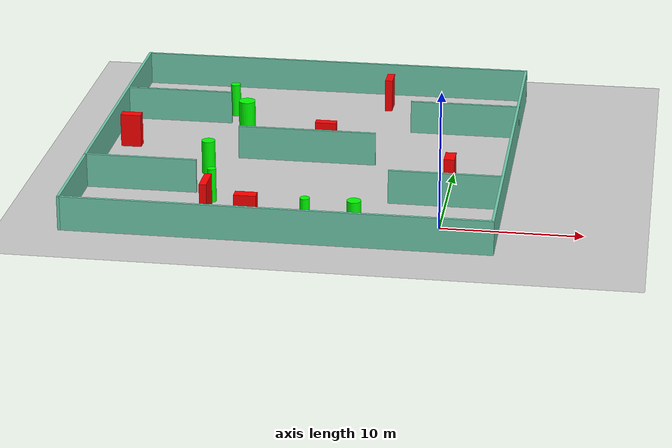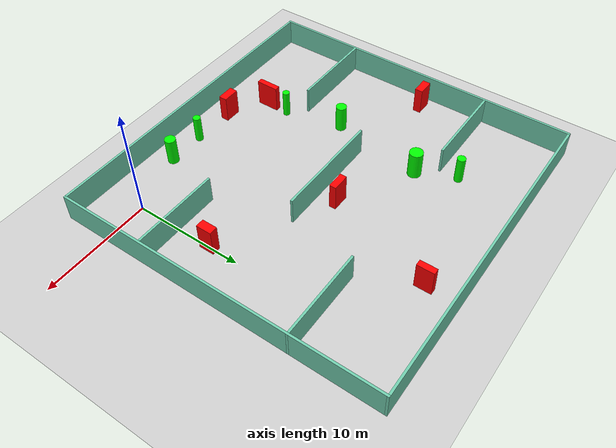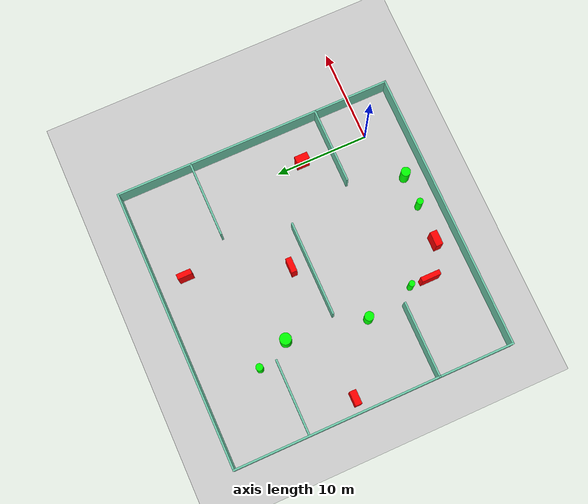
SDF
<sdf version="1.7">
 <world name="default">
  <light name="sun" type="directional">
   <pose>0 0 10 0 -0 0</pose>
   <diffuse>0.8 0.8 0.8 1</diffuse>
   <specular>0.2 0.2 0.2 1</specular>
   <attenuation>
    <range>1000</range>
    <constant>0.9</constant>
    <linear>0.01</linear>
    <quadratic>0.001</quadratic>
   </attenuation>
   <direction>-0.5 0.1 -0.9</direction>
   <spot><inner_angle>0</inner_angle><outer_angle>0</outer_angle><falloff>0</falloff></spot>
  </light>
  <model name="ground_plane">
   <static>1</static>
   <link name="link">
    <collision name="collision">
     <geometry><plane><normal>0 0 1</normal><size>100 100</size></plane></geometry>
     <surface>
      <contact><collide_bitmask>65535</collide_bitmask></contact>
      <friction><ode><mu>100</mu><mu2>50</mu2></ode></friction>
     </surface>
    </collision>
    <visual name="visual">
     <cast_shadows>0</cast_shadows>
     <geometry><plane><normal>0 0 1</normal><size>100 100</size></plane></geometry>
     <material>
      <script><uri>file://media/materials/scripts/gazebo.material</uri><name>Gazebo/Grey</name></script>
     </material>
    </visual>
   </link>
  </model>
  <gravity>0 0 -9.8</gravity>
  <magnetic_field>6e-06 2.3e-05 -4.2e-05</magnetic_field>
  <atmosphere type="adiabatic"/>
  <physics type="ode">
   <max_step_size>0.001</max_step_size>
   <real_time_factor>1</real_time_factor>
   <real_time_update_rate>1000</real_time_update_rate>
  </physics>
  <scene><ambient>0.4 0.4 0.4 1</ambient><background>0.7 0.7 0.7 1</background><shadows>1</shadows></scene>
  <spherical_coordinates>
   <surface_model>EARTH_WGS84</surface_model>
   <latitude_deg>0</latitude_deg>
   <longitude_deg>0</longitude_deg>
   <elevation>0</elevation>
   <heading_deg>0</heading_deg>
  </spherical_coordinates>
  <model name="my_base_walls">
   <link name="Wall_10">
    <collision name="Wall_10_Collision">
     <geometry><box><size>8.2 0.2 2.5</size></box></geometry>
     <pose>0 0 1.25 0 -0 0</pose>
    </collision>
    <visual name="Wall_10_Visual">
     <pose>0 0 1.25 0 -0 0</pose>
     <geometry><box><size>8.2 0.2 2.5</size></box></geometry>
     <material>
      <script><uri>file://media/materials/scripts/gazebo.material</uri><name>Gazebo/Grey</name></script>
      <ambient>0.435294 0.796078 0.67451 1</ambient>
     </material>
     <meta><layer>0</layer></meta>
    </visual>
    <pose>-11 -7 0 0 -0 0</pose>
   </link>
   <link name="Wall_12">
    <collision name="Wall_12_Collision">
     <geometry><box><size>8.2 0.2 2.5</size></box></geometry>
     <pose>0 0 1.25 0 -0 0</pose>
    </collision>
    <visual name="Wall_12_Visual">
     <pose>0 0 1.25 0 -0 0</pose>
     <geometry><box><size>8.2 0.2 2.5</size></box></geometry>
     <material>
      <script><uri>file://media/materials/scripts/gazebo.material</uri><name>Gazebo/Grey</name></script>
      <ambient>0.435294 0.796078 0.67451 1</ambient>
     </material>
     <meta><layer>0</layer></meta>
    </visual>
    <pose>-11 7 0 0 -0 0</pose>
   </link>
   <link name="Wall_14">
    <collision name="Wall_14_Collision">
     <geometry><box><size>8.2 0.2 2.5</size></box></geometry>
     <pose>0 0 1.25 0 -0 0</pose>
    </collision>
    <visual name="Wall_14_Visual">
     <pose>0 0 1.25 0 -0 0</pose>
     <geometry><box><size>8.2 0.2 2.5</size></box></geometry>
     <material>
      <script><uri>file://media/materials/scripts/gazebo.material</uri><name>Gazebo/Grey</name></script>
      <ambient>0.435294 0.796078 0.67451 1</ambient>
     </material>
     <meta><layer>0</layer></meta>
    </visual>
    <pose>11 7 0 0 -0 3.14159</pose>
   </link>
   <link name="Wall_16">
    <collision name="Wall_16_Collision">
     <geometry><box><size>10.2 0.2 2.5</size></box></geometry>
     <pose>0 0 1.25 0 -0 0</pose>
    </collision>
    <visual name="Wall_16_Visual">
     <pose>0 0 1.25 0 -0 0</pose>
     <geometry><box><size>10.2 0.2 2.5</size></box></geometry>
     <material>
      <script><uri>file://media/materials/scripts/gazebo.material</uri><name>Gazebo/Grey</name></script>
      <ambient>0.435294 0.796078 0.67451 1</ambient>
     </material>
     <meta><layer>0</layer></meta>
    </visual>
    <pose>0 0 0 0 -0 3.14159</pose>
   </link>
   <link name="Wall_2">
    <collision name="Wall_2_Collision">
     <geometry><box><size>30.2 0.2 2.5</size></box></geometry>
     <pose>0 0 1.25 0 -0 0</pose>
    </collision>
    <visual name="Wall_2_Visual">
     <pose>0 0 1.25 0 -0 0</pose>
     <geometry><box><size>30.2 0.2 2.5</size></box></geometry>
     <material>
      <script><uri>file://media/materials/scripts/gazebo.material</uri><name>Gazebo/Grey</name></script>
      <ambient>0.435294 0.796078 0.67451 1</ambient>
     </material>
     <meta><layer>0</layer></meta>
    </visual>
    <pose>0 -15 0 0 -0 3.14159</pose>
   </link>
   <link name="Wall_3">
    <collision name="Wall_3_Collision">
     <geometry><box><size>30.2 0.2 2.5</size></box></geometry>
     <pose>0 0 1.25 0 -0 0</pose>
    </collision>
    <visual name="Wall_3_Visual">
     <pose>0 0 1.25 0 -0 0</pose>
     <geometry><box><size>30.2 0.2 2.5</size></box></geometry>
     <material>
      <script><uri>file://media/materials/scripts/gazebo.material</uri><name>Gazebo/Grey</name></script>
      <ambient>0.435294 0.796078 0.67451 1</ambient>
     </material>
     <meta><layer>0</layer></meta>
    </visual>
    <pose>-15 0 0 0 -0 1.5708</pose>
   </link>
   <link name="Wall_4">
    <collision name="Wall_4_Collision">
     <geometry><box><size>30.2 0.2 2.5</size></box></geometry>
     <pose>0 0 1.25 0 -0 0</pose>
    </collision>
    <visual name="Wall_4_Visual">
     <pose>0 0 1.25 0 -0 0</pose>
     <geometry><box><size>30.2 0.2 2.5</size></box></geometry>
     <material>
      <script><uri>file://media/materials/scripts/gazebo.material</uri><name>Gazebo/Grey</name></script>
      <ambient>0.435294 0.796078 0.67451 1</ambient>
     </material>
     <meta><layer>0</layer></meta>
    </visual>
    <pose>0 15 0 0 -0 0</pose>
   </link>
   <link name="Wall_6">
    <collision name="Wall_6_Collision">
     <geometry><box><size>30.2 0.2 2.5</size></box></geometry>
     <pose>0 0 1.25 0 -0 0</pose>
    </collision>
    <visual name="Wall_6_Visual">
     <pose>0 0 1.25 0 -0 0</pose>
     <geometry><box><size>30.2 0.2 2.5</size></box></geometry>
     <material>
      <script><uri>file://media/materials/scripts/gazebo.material</uri><name>Gazebo/Grey</name></script>
      <ambient>0.435294 0.796078 0.67451 1</ambient>
     </material>
     <meta><layer>0</layer></meta>
    </visual>
    <pose>15 0 0 0 -0 1.5708</pose>
   </link>
   <link name="Wall_8">
    <collision name="Wall_8_Collision">
     <geometry><box><size>8.2 0.2 2.5</size></box></geometry>
     <pose>0 0 1.25 0 -0 0</pose>
    </collision>
    <visual name="Wall_8_Visual">
     <pose>0 0 1.25 0 -0 0</pose>
     <geometry><box><size>8.2 0.2 2.5</size></box></geometry>
     <material>
      <script><uri>file://media/materials/scripts/gazebo.material</uri><name>Gazebo/Grey</name></script>
      <ambient>0.435294 0.796078 0.67451 1</ambient>
     </material>
     <meta><layer>0</layer></meta>
    </visual>
    <pose>11 -7 0 0 -0 3.14159</pose>
   </link>
   <static>1</static>
   <pose>-11 11 0 0 -0 0</pose>
  </model>
  <model name="cylinder1">
   <static>1</static>
   <link name="link">
    <inertial>
     <mass>1</mass>
     <inertia><ixx>0.5</ixx><ixy>0</ixy><ixz>0</ixz><iyy>0.5</iyy><iyz>0</iyz><izz>1</izz></inertia>
    </inertial>
    <collision name="collision">
     <geometry><cylinder><radius>0.3193299447528954</radius><length>2.5</length></cylinder></geometry>
    </collision>
    <visual name="visual">
     <geometry><cylinder><radius>0.3193299447528954</radius><length>2.5</length></cylinder></geometry>
     <material>
      <ambient>0 1 0 1</ambient>
      <diffuse>0 1 0 1</diffuse>
      <specular>0.1 0.1 0.1 1</specular>
      <emissive>0 0 0 0</emissive>
     </material>
    </visual>
   </link>
   <pose>-16.506676792405212 2.549113611327476 1.25 0 0 0</pose>
  </model>
  <model name="cylinder2">
   <static>1</static>
   <link name="link">
    <inertial>
     <mass>1</mass>
     <inertia><ixx>0.5</ixx><ixy>0</ixy><ixz>0</ixz><iyy>0.5</iyy><iyz>0</iyz><izz>1</izz></inertia>
    </inertial>
    <collision name="collision">
     <geometry><cylinder><radius>0.4984983910241143</radius><length>2.5</length></cylinder></geometry>
    </collision>
    <visual name="visual">
     <geometry><cylinder><radius>0.4984983910241143</radius><length>2.5</length></cylinder></geometry>
     <material>
      <ambient>0 1 0 1</ambient>
      <diffuse>0 1 0 1</diffuse>
      <specular>0.1 0.1 0.1 1</specular>
      <emissive>0 0 0 0</emissive>
     </material>
    </visual>
   </link>
   <pose>-5.737953770354649 -1.8297029005374106 1.25 0 0 0</pose>
  </model>
  <model name="cylinder3">
   <static>1</static>
   <link name="link">
    <inertial>
     <mass>1</mass>
     <inertia><ixx>0.5</ixx><ixy>0</ixy><ixz>0</ixz><iyy>0.5</iyy><iyz>0</iyz><izz>1</izz></inertia>
    </inertial>
    <collision name="collision">
     <geometry><cylinder><radius>0.34870405236391383</radius><length>2.5</length></cylinder></geometry>
    </collision>
    <visual name="visual">
     <geometry><cylinder><radius>0.34870405236391383</radius><length>2.5</length></cylinder></geometry>
     <material>
      <ambient>0 1 0 1</ambient>
      <diffuse>0 1 0 1</diffuse>
      <specular>0.1 0.1 0.1 1</specular>
      <emissive>0 0 0 0</emissive>
     </material>
    </visual>
   </link>
   <pose>-9.157224812846481 -1.8275171542015656 1.25 0 0 0</pose>
  </model>
  <model name="cylinder4">
   <static>1</static>
   <link name="link">
    <inertial>
     <mass>1</mass>
     <inertia><ixx>0.5</ixx><ixy>0</ixy><ixz>0</ixz><iyy>0.5</iyy><iyz>0</iyz><izz>1</izz></inertia>
    </inertial>
    <collision name="collision">
     <geometry><cylinder><radius>0.49163248309142693</radius><length>2.5</length></cylinder></geometry>
    </collision>
    <visual name="visual">
     <geometry><cylinder><radius>0.49163248309142693</radius><length>2.5</length></cylinder></geometry>
     <material>
      <ambient>0 1 0 1</ambient>
      <diffuse>0 1 0 1</diffuse>
      <specular>0.1 0.1 0.1 1</specular>
      <emissive>0 0 0 0</emissive>
     </material>
    </visual>
   </link>
   <pose>-17.75578974704507 7.827686292557875 1.25 0 0 0</pose>
  </model>
  <model name="cylinder5">
   <static>1</static>
   <link name="link">
    <inertial>
     <mass>1</mass>
     <inertia><ixx>0.5</ixx><ixy>0</ixy><ixz>0</ixz><iyy>0.5</iyy><iyz>0</iyz><izz>1</izz></inertia>
    </inertial>
    <collision name="collision">
     <geometry><cylinder><radius>0.6174456605416301</radius><length>2.5</length></cylinder></geometry>
    </collision>
    <visual name="visual">
     <geometry><cylinder><radius>0.6174456605416301</radius><length>2.5</length></cylinder></geometry>
     <material>
      <ambient>0 1 0 1</ambient>
      <diffuse>0 1 0 1</diffuse>
      <specular>0.1 0.1 0.1 1</specular>
      <emissive>0 0 0 0</emissive>
     </material>
    </visual>
   </link>
   <pose>-16.418560159039515 16.335442790359803 1.25 0 0 0</pose>
  </model>
  <model name="cylinder6">
   <static>1</static>
   <link name="link">
    <inertial>
     <mass>1</mass>
     <inertia><ixx>0.5</ixx><ixy>0</ixy><ixz>0</ixz><iyy>0.5</iyy><iyz>0</iyz><izz>1</izz></inertia>
    </inertial>
    <collision name="collision">
     <geometry><cylinder><radius>0.3814859643592877</radius><length>2.5</length></cylinder></geometry>
    </collision>
    <visual name="visual">
     <geometry><cylinder><radius>0.3814859643592877</radius><length>2.5</length></cylinder></geometry>
     <material>
      <ambient>0 1 0 1</ambient>
      <diffuse>0 1 0 1</diffuse>
      <specular>0.1 0.1 0.1 1</specular>
      <emissive>0 0 0 0</emissive>
     </material>
    </visual>
   </link>
   <pose>-17.933951828256053 19.808186195740873 1.25 0 0 0</pose>
  </model>
  <model name="box1">
   <static>1</static>
   <link name="link">
    <inertial>
     <mass>1</mass>
     <inertia><ixx>0.083</ixx><ixy>0</ixy><ixz>0</ixz><iyy>0.083</iyy><iyz>0</iyz><izz>0.083</izz></inertia>
    </inertial>
    <collision name="collision">
     <geometry><box><size>1.5715904638905331 0.6207503761036312 2.5</size></box></geometry>
    </collision>
    <visual name="visual">
     <geometry><box><size>1.5715904638905331 0.6207503761036312 2.5</size></box></geometry>
     <material>
      <ambient>1 0 0 1</ambient>
      <diffuse>1 0 0 1</diffuse>
      <specular>0.1 0.1 0.1 1</specular>
      <emissive>0 0 0 0</emissive>
     </material>
    </visual>
    <sensor name="my_contact" type="contact">
     <contact><collision>box_collision</collision><topic>__default_topic__</topic></contact>
    </sensor>
   </link>
   <pose>-9.840611140008715 12.804355783368976 1.25 0 0 0</pose>
  </model>
  <model name="box2">
   <static>1</static>
   <link name="link">
    <inertial>
     <mass>1</mass>
     <inertia><ixx>0.083</ixx><ixy>0</ixy><ixz>0</ixz><iyy>0.083</iyy><iyz>0</iyz><izz>0.083</izz></inertia>
    </inertial>
    <collision name="collision">
     <geometry><box><size>1.5591329575661492 0.7600271639706733 2.5</size></box></geometry>
    </collision>
    <visual name="visual">
     <geometry><box><size>1.5591329575661492 0.7600271639706733 2.5</size></box></geometry>
     <material>
      <ambient>1 0 0 1</ambient>
      <diffuse>1 0 0 1</diffuse>
      <specular>0.1 0.1 0.1 1</specular>
      <emissive>0 0 0 0</emissive>
     </material>
    </visual>
    <sensor name="my_contact" type="contact">
     <contact><collision>box_collision</collision><topic>__default_topic__</topic></contact>
    </sensor>
   </link>
   <pose>-13.313763858472804 -1.6865368989782334 1.25 0 0 0</pose>
  </model>
  <model name="box3">
   <static>1</static>
   <link name="link">
    <inertial>
     <mass>1</mass>
     <inertia><ixx>0.083</ixx><ixy>0</ixy><ixz>0</ixz><iyy>0.083</iyy><iyz>0</iyz><izz>0.083</izz></inertia>
    </inertial>
    <collision name="collision">
     <geometry><box><size>0.7687147863684869 1.407803973784217 2.5</size></box></geometry>
    </collision>
    <visual name="visual">
     <geometry><box><size>0.7687147863684869 1.407803973784217 2.5</size></box></geometry>
     <material>
      <ambient>1 0 0 1</ambient>
      <diffuse>1 0 0 1</diffuse>
      <specular>0.1 0.1 0.1 1</specular>
      <emissive>0 0 0 0</emissive>
     </material>
    </visual>
    <sensor name="my_contact" type="contact">
     <contact><collision>box_collision</collision><topic>__default_topic__</topic></contact>
    </sensor>
   </link>
   <pose>-0.04483783089126092 7.272520399056903 1.25 0 0 0</pose>
  </model>
  <model name="box4">
   <static>1</static>
   <link name="link">
    <inertial>
     <mass>1</mass>
     <inertia><ixx>0.083</ixx><ixy>0</ixy><ixz>0</ixz><iyy>0.083</iyy><iyz>0</iyz><izz>0.083</izz></inertia>
    </inertial>
    <collision name="collision">
     <geometry><box><size>1.5213354108746642 0.7213570340607354 2.5</size></box></geometry>
    </collision>
    <visual name="visual">
     <geometry><box><size>1.5213354108746642 0.7213570340607354 2.5</size></box></geometry>
     <material>
      <ambient>1 0 0 1</ambient>
      <diffuse>1 0 0 1</diffuse>
      <specular>0.1 0.1 0.1 1</specular>
      <emissive>0 0 0 0</emissive>
     </material>
    </visual>
    <sensor name="my_contact" type="contact">
     <contact><collision>box_collision</collision><topic>__default_topic__</topic></contact>
    </sensor>
   </link>
   <pose>-24.49449106648967 12.393764387774095 1.25 0 0 0</pose>
  </model>
  <model name="box5">
   <static>1</static>
   <link name="link">
    <inertial>
     <mass>1</mass>
     <inertia><ixx>0.083</ixx><ixy>0</ixy><ixz>0</ixz><iyy>0.083</iyy><iyz>0</iyz><izz>0.083</izz></inertia>
    </inertial>
    <collision name="collision">
     <geometry><box><size>0.5558671390446017 1.5386441036728826 2.5</size></box></geometry>
    </collision>
    <visual name="visual">
     <geometry><box><size>0.5558671390446017 1.5386441036728826 2.5</size></box></geometry>
     <material>
      <ambient>1 0 0 1</ambient>
      <diffuse>1 0 0 1</diffuse>
      <specular>0.1 0.1 0.1 1</specular>
      <emissive>0 0 0 0</emissive>
     </material>
    </visual>
    <sensor name="my_contact" type="contact">
     <contact><collision>box_collision</collision><topic>__default_topic__</topic></contact>
    </sensor>
   </link>
   <pose>-6.32925235877965 22.998962032804855 1.25 0 0 0</pose>
  </model>
  <model name="box6">
   <static>1</static>
   <link name="link">
    <inertial>
     <mass>1</mass>
     <inertia><ixx>0.083</ixx><ixy>0</ixy><ixz>0</ixz><iyy>0.083</iyy><iyz>0</iyz><izz>0.083</izz></inertia>
    </inertial>
    <collision name="collision">
     <geometry><box><size>0.5105866839434237 2.066229883143789 2.5</size></box></geometry>
    </collision>
    <visual name="visual">
     <geometry><box><size>0.5105866839434237 2.066229883143789 2.5</size></box></geometry>
     <material>
      <ambient>1 0 0 1</ambient>
      <diffuse>1 0 0 1</diffuse>
      <specular>0.1 0.1 0.1 1</specular>
      <emissive>0 0 0 0</emissive>
     </material>
    </visual>
    <sensor name="my_contact" type="contact">
     <contact><collision>box_collision</collision><topic>__default_topic__</topic></contact>
    </sensor>
   </link>
   <pose>-16.55747463489186 0.4849874577349542 1.25 0 0 0</pose>
  </model>
 </world>
</sdf>
